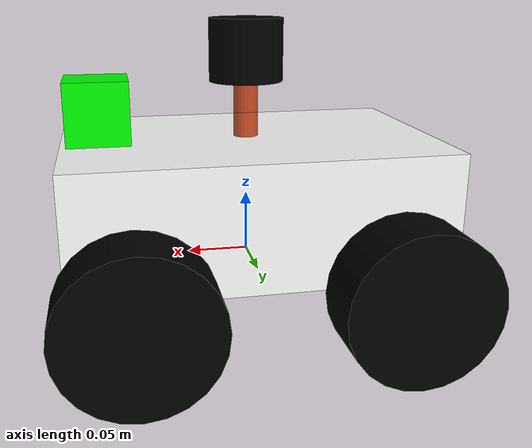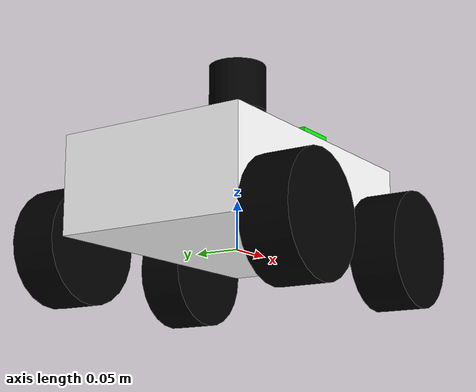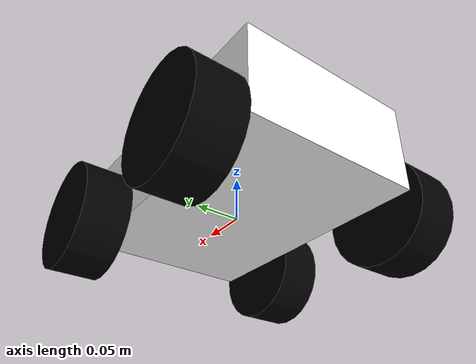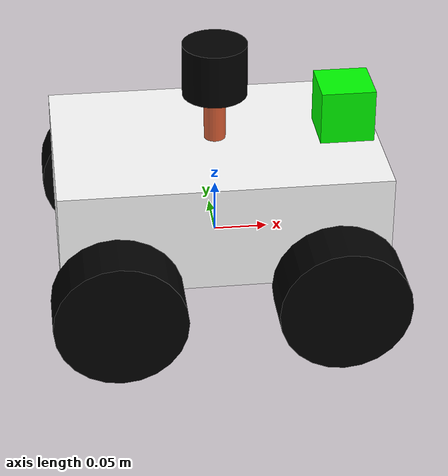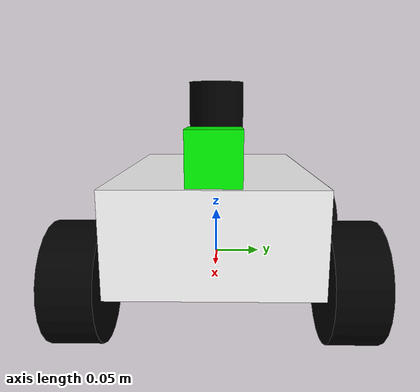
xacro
<?xml version="1.0"?>

<robot name="robot" xmlns:xacro="http://www.ros.org/wiki/xacro">

    <xacro:include filename="my_lidar.xacro" />
    <xacro:include filename="my_lidar_sensor.xacro" />

  <xacro:property name="length_wheel" value="0.05" />
  <xacro:property name="radius_wheel" value="0.06" />
  <xacro:property name="PI" value="3.1415926"/>
  <xacro:macro name="default_inertial" params="mass">
    <inertial>
      <mass value="${mass}" />
      <inertia ixx="0.01" ixy="0.0" ixz="0.0"
                    iyy="0.01" iyz="0.0" izz="0.01" />
    </inertial>
  </xacro:macro>

  <!-- base_link to livox_frame -->
  <xacro:arg name="xyz" default="0.12 0.0 0.175" />
  <xacro:arg name="rpy" default="0 0 0" />

  <link name="dummy"/>

  <link name="base_link">
    <visual>
      <geometry>
        <box size="0.2 .3 .1"/>
      </geometry>
      <origin rpy="0 0 ${PI/2}" xyz="0 0 0.05"/>
      <material name="white">
        <color rgba="1 1 1 1"/>
      </material>
    </visual>
    <collision>
      <geometry>
        <box size="0.2 .3 0.1"/>
      </geometry>
      <origin rpy="0 0 ${PI/2}" xyz="0 0 0.05"/>
    </collision>
    <xacro:default_inertial mass="8.2"/>
  </link>

  <joint name="dummy_joint" type="fixed">
     <parent link="dummy"/>
     <child link="base_link"/>
  </joint>

  <link name="wheel_1">
    <visual>
      <geometry>
        <cylinder length="${length_wheel}" radius="${radius_wheel}"/>
      </geometry>
      <origin rpy="0 0 0" xyz="0 0 0"/>
      <material name="black">
        <color rgba="0 0 0 1"/>
      </material>
    </visual>
    <collision>
      <geometry>
        <cylinder length="${length_wheel}" radius="${radius_wheel}"/>
      </geometry>
    </collision>
    <mu1>0.5</mu1>
    <mu2>0.5</mu2>
    <xacro:default_inertial mass="0.5"/>
  </link>

  <link name="wheel_2">
    <visual>
      <geometry>
        <cylinder length="${length_wheel}" radius="${radius_wheel}"/>
      </geometry>
      <origin rpy="0 0 0" xyz="0 0 0"/>
      <material name="black"/>
    </visual>
    <collision>
      <geometry>
        <cylinder length="${length_wheel}" radius="${radius_wheel}"/>
      </geometry>
    </collision>
    <mu1>0.5</mu1>
    <mu2>0.5</mu2>
    <xacro:default_inertial mass="0.5"/>
  </link>

  <link name="wheel_3">
    <visual>
      <geometry>
        <cylinder length="${length_wheel}" radius="${radius_wheel}"/>
      </geometry>
      <origin rpy="0 0 0" xyz="0 0 0"/>
      <material name="black"/>
    </visual>
    <collision>
      <geometry>
        <cylinder length="${length_wheel}" radius="${radius_wheel}"/>
      </geometry>
    </collision>
    <mu1>0.5</mu1>
    <mu2>0.5</mu2>
    <xacro:default_inertial mass="0.5"/>
  </link>

  <link name="wheel_4">
    <visual>
      <geometry>
        <cylinder length="${length_wheel}" radius="${radius_wheel}"/>
      </geometry>
      <origin rpy="0 0 0" xyz="0 0 0" />
      <material name="black"/>
    </visual>
    <collision>
      <geometry>
        <cylinder length="${length_wheel}" radius="${radius_wheel}"/>
      </geometry>
    </collision>
    <mu1>0.5</mu1>
    <mu2>0.5</mu2>
    <xacro:default_inertial mass="0.5"/>
  </link>

  <joint name="base_to_wheel1" type="continuous">
    <parent link="base_link"/>
    <child link="wheel_1"/>
    <origin rpy="${-PI/2} 0 0" xyz="0.1 0.13 0"/>
    <axis xyz="0 0 1" />
  </joint>

  <joint name="base_to_wheel2" type="continuous">
    <axis xyz="0 0 1" />
    <anchor xyz="0 0 0" />
    <limit effort="100" velocity="100" />
    <parent link="base_link"/>
    <child link="wheel_2"/>
    <origin rpy="${-PI/2} 0 0" xyz="-0.1 0.13 0"/>
  </joint>

  <joint name="base_to_wheel3" type="continuous">
    <parent link="base_link"/>
    <axis xyz="0 0 1" />
    <child link="wheel_3"/>
    <origin rpy="${-PI/2} 0 0" xyz="0.1 -0.13 0"/>
  </joint>

  <joint name="base_to_wheel4" type="continuous">
    <parent link="base_link"/>
    <axis xyz="0 0 1" />
    <child link="wheel_4"/>
    <origin rpy="${-PI/2} 0 0" xyz="-0.1 -0.13 0"/>
  </joint>

  <!-- IMU joint -->
  <joint name="imu_joint" type="fixed">
    <axis xyz="0 1 0" />
    <origin xyz="0.12 0 0.125" rpy="0 0 0"/>
    <parent link="base_link"/>
    <child link="imu_link"/>
  </joint>

  <!-- IMU -->
  <link name="imu_link">
    <collision>
      <origin xyz="0 0 0" rpy="0 0 0"/>
      <geometry>
        <box size="0.05 0.05 0.05"/>
      </geometry>
    </collision>
    <visual>
      <origin xyz="0 0 0" rpy="0 0 0"/>
      <geometry>
        <box size="0.05 0.05 0.05"/>
      </geometry>
      <material name="green">
        <color rgba="0 1 0 1"/>
      </material>
    </visual>
    <inertial>
      <mass value="1e-2" />
      <origin xyz="0 0 0" rpy="0 0 0"/>
      <inertia ixx="1e-6" ixy="0" ixz="0" iyy="1e-6" iyz="0" izz="1e-6" />
    </inertial>
  </link>

  <gazebo reference="base_link">
    <material>Gazebo/TheNumber</material>
  </gazebo>
  <gazebo reference="wheel_1">
    <material>Gazebo/XYZPoints</material>
  </gazebo>
  <gazebo reference="wheel_2">
    <material>Gazebo/XYZPoints</material>
  </gazebo>
  <gazebo reference="wheel_3">
    <material>Gazebo/XYZPoints</material>
  </gazebo>
  <gazebo reference="wheel_4">
    <material>Gazebo/XYZPoints</material>
  </gazebo>
  <gazebo reference="imu_link">
    <material>Gazebo/BuildingFrame</material>
  </gazebo>
  <gazebo reference="livox_frame">
    <material>Gazebo/TurquoiseGlow</material>
  </gazebo>

  <gazebo>
    <plugin name="mecanum_controller" filename="libgazebo_ros_planar_move.so">
      <robotNamespace>/</robotNamespace>

      <topicName>cmd_vel</topicName>

      <update_rate>100</update_rate>

      <publish_rate>10</publish_rate>

      <publish_odom>false</publish_odom>
      <publish_odom_tf>false</publish_odom_tf>
      <robotBaseFrame>base_link</robotBaseFrame>
      <!-- Frame IDs -->
    <odometryTopic>odom</odometryTopic>
    <odometryFrame>odom</odometryFrame>

      <covariance_x>0.0001</covariance_x>
      <covariance_y>0.0001</covariance_y>
      <covariance_yaw>0.01</covariance_yaw>
    </plugin>
  </gazebo>

  <gazebo reference="imu_link">
    <sensor name="mid360_imu" type="imu">
      <always_on>true</always_on>
      <update_rate>100</update_rate>
      <plugin name="imu_plugin" filename="libgazebo_ros_imu_sensor.so">
        <topicName>imu</topicName>
        <bodyName>imu</bodyName>
        <updateRateHZ>100.0</updateRateHZ>
        <gaussianNoise>0.0</gaussianNoise>
        <frameName>imu_link</frameName>
      </plugin>
    </sensor>
  </gazebo>

</robot>

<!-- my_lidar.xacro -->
<robot name="my_laser" xmlns:xacro="http://wiki.ros.org/xacro">

    <xacro:property name="support_length" value="0.05" />
    <xacro:property name="support_radius" value="0.01" />
    <xacro:property name="support_x" value="0.0" />
    <xacro:property name="support_y" value="0.0" />
    <xacro:property name="support_z" value="0.12" />

    <link name="support">
        <visual>
            <geometry>
                <cylinder radius="${support_radius}" length="${support_length}" />
            </geometry>
            <origin xyz="0.0 0.0 0.0" rpy="0.0 0.0 0.0" />
            <material name="red">
                <color rgba="0.8 0.2 0.0 0.8" />
            </material>
        </visual>
    </link>

    <joint name="support2base_link" type="fixed">
        <parent link="base_link" />
        <child link="support" />
        <origin xyz="${support_x} ${support_y} ${support_z}" />
    </joint>

    <xacro:property name="laser_length" value="0.05" />
    <xacro:property name="laser_radius" value="0.03" />
    <xacro:property name="laser_x" value="0.0" />
    <xacro:property name="laser_y" value="0.0" />
    <xacro:property name="laser_z" value="${support_length / 2 + laser_length / 2}" />

    <link name="laser">
        <visual>
            <geometry>
                <cylinder radius="${laser_radius}" length="${laser_length}" />
            </geometry>
            <origin xyz="0.0 0.0 0.0" rpy="0.0 0.0 0.0" />
            <material name="black" />
        </visual>
    </link>

    <joint name="laser2support" type="fixed">
        <parent link="support" />
        <child link="laser" />
        <origin xyz="${laser_x} ${laser_y} ${laser_z}" />
    </joint>
</robot>
